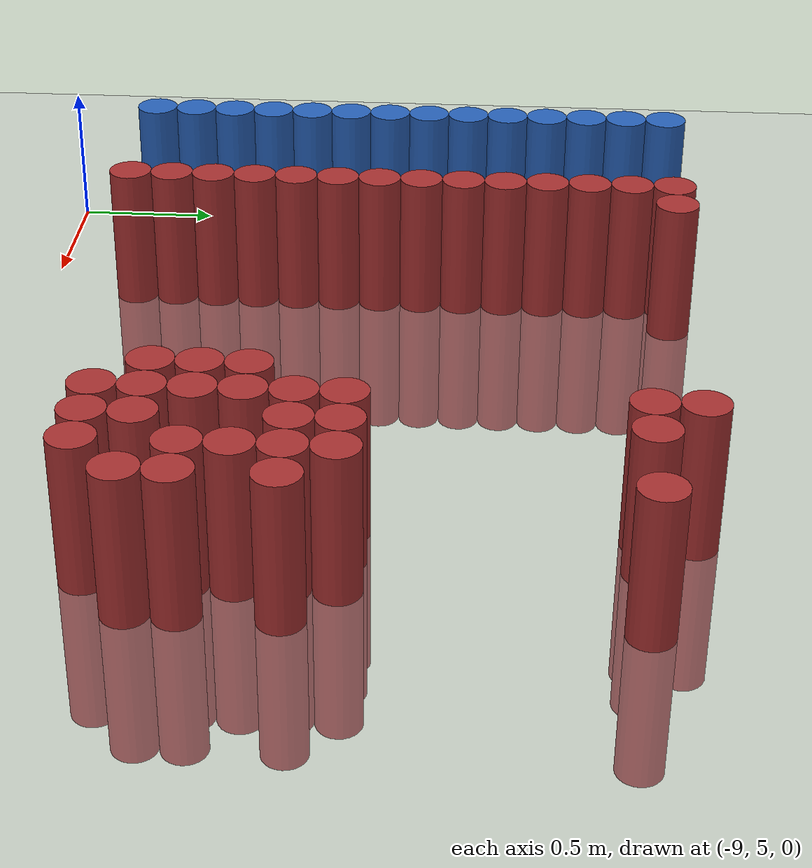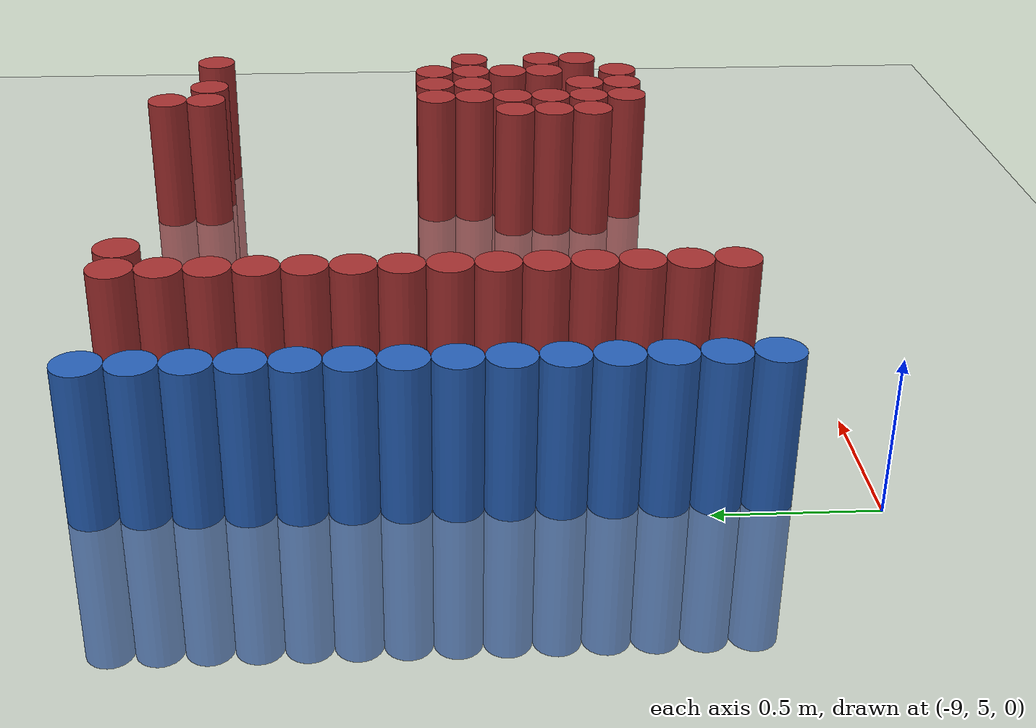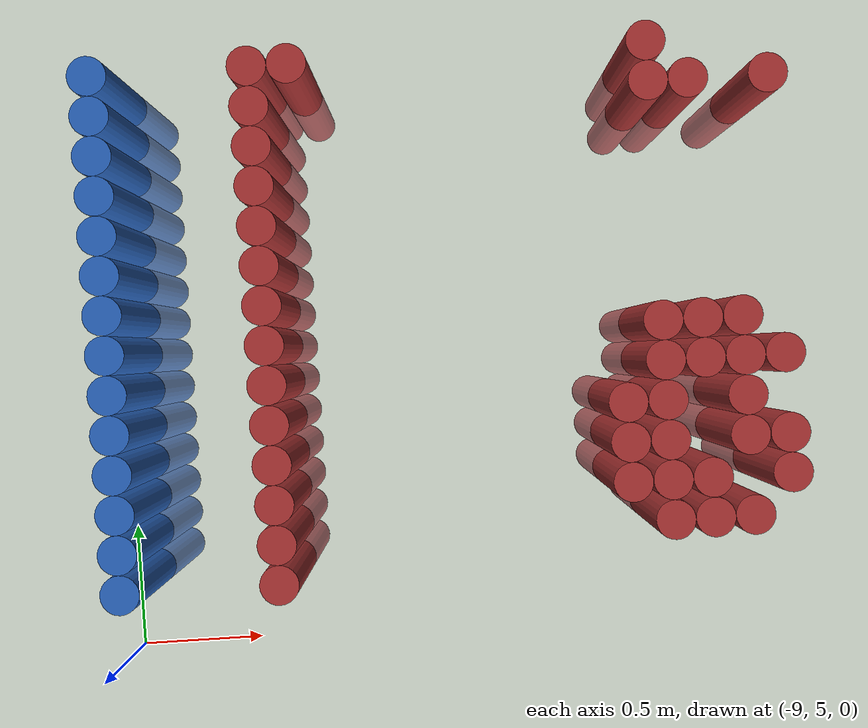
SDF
<sdf version="1.6">
 <world name="default">
  <model name="ground_plane">
   <static>1</static>
   <link name="link">
    <collision name="collision">
     <geometry><plane><normal>0 0 1</normal><size>100 100</size></plane></geometry>
     <surface><friction><ode><mu>100</mu><mu2>50</mu2></ode></friction></surface>
    </collision>
    <visual name="visual">
     <cast_shadows>0</cast_shadows>
     <geometry><plane><normal>0 0 1</normal><size>100 100</size></plane></geometry>
     <material>
      <script><uri>file://media/materials/scripts/gazebo.material</uri><name>Gazebo/Grey</name></script>
     </material>
    </visual>
   </link>
  </model>
  <model name="unit_cylinder_126">
   <static>1</static>
   <pose>-8.925000 5.325000 0.000000 0.000000 0.000000 0.000000</pose>
   <link name="link">
    <inertial>
     <mass>1</mass>
     <inertia><ixx>0.145833</ixx><ixy>0</ixy><ixz>0</ixz><iyy>0.145833</iyy><iyz>0</iyz><izz>0.125</izz></inertia>
    </inertial>
    <collision name="collision">
     <geometry><cylinder><radius>0.075000</radius><length>1</length></cylinder></geometry>
    </collision>
    <visual name="visual">
     <geometry><cylinder><radius>0.075000</radius><length>1</length></cylinder></geometry>
     <material>
      <ambient>0.152000 0.379000 0.720000 1</ambient>
      <diffuse>0.152000 0.379000 0.720000 1</diffuse>
     </material>
     <material>
      <script><name>Gazebo/Grey</name><uri>file://media/materials/scripts/gazebo.material</uri></script>
     </material>
    </visual>
   </link>
  </model>
  <model name="unit_cylinder_127">
   <static>1</static>
   <pose>-8.925000 5.475000 0.000000 0.000000 0.000000 0.000000</pose>
   <link name="link">
    <inertial>
     <mass>1</mass>
     <inertia><ixx>0.145833</ixx><ixy>0</ixy><ixz>0</ixz><iyy>0.145833</iyy><iyz>0</iyz><izz>0.125</izz></inertia>
    </inertial>
    <collision name="collision">
     <geometry><cylinder><radius>0.075000</radius><length>1</length></cylinder></geometry>
    </collision>
    <visual name="visual">
     <geometry><cylinder><radius>0.075000</radius><length>1</length></cylinder></geometry>
     <material>
      <ambient>0.152000 0.379000 0.720000 1</ambient>
      <diffuse>0.152000 0.379000 0.720000 1</diffuse>
     </material>
     <material>
      <script><name>Gazebo/Grey</name><uri>file://media/materials/scripts/gazebo.material</uri></script>
     </material>
    </visual>
   </link>
  </model>
  <model name="unit_cylinder_128">
   <static>1</static>
   <pose>-8.925000 5.625000 0.000000 0.000000 0.000000 0.000000</pose>
   <link name="link">
    <inertial>
     <mass>1</mass>
     <inertia><ixx>0.145833</ixx><ixy>0</ixy><ixz>0</ixz><iyy>0.145833</iyy><iyz>0</iyz><izz>0.125</izz></inertia>
    </inertial>
    <collision name="collision">
     <geometry><cylinder><radius>0.075000</radius><length>1</length></cylinder></geometry>
    </collision>
    <visual name="visual">
     <geometry><cylinder><radius>0.075000</radius><length>1</length></cylinder></geometry>
     <material>
      <ambient>0.152000 0.379000 0.720000 1</ambient>
      <diffuse>0.152000 0.379000 0.720000 1</diffuse>
     </material>
     <material>
      <script><name>Gazebo/Grey</name><uri>file://media/materials/scripts/gazebo.material</uri></script>
     </material>
    </visual>
   </link>
  </model>
  <model name="unit_cylinder_129">
   <static>1</static>
   <pose>-8.925000 5.775000 0.000000 0.000000 0.000000 0.000000</pose>
   <link name="link">
    <inertial>
     <mass>1</mass>
     <inertia><ixx>0.145833</ixx><ixy>0</ixy><ixz>0</ixz><iyy>0.145833</iyy><iyz>0</iyz><izz>0.125</izz></inertia>
    </inertial>
    <collision name="collision">
     <geometry><cylinder><radius>0.075000</radius><length>1</length></cylinder></geometry>
    </collision>
    <visual name="visual">
     <geometry><cylinder><radius>0.075000</radius><length>1</length></cylinder></geometry>
     <material>
      <ambient>0.152000 0.379000 0.720000 1</ambient>
      <diffuse>0.152000 0.379000 0.720000 1</diffuse>
     </material>
     <material>
      <script><name>Gazebo/Grey</name><uri>file://media/materials/scripts/gazebo.material</uri></script>
     </material>
    </visual>
   </link>
  </model>
  <model name="unit_cylinder_130">
   <static>1</static>
   <pose>-8.925000 5.925000 0.000000 0.000000 0.000000 0.000000</pose>
   <link name="link">
    <inertial>
     <mass>1</mass>
     <inertia><ixx>0.145833</ixx><ixy>0</ixy><ixz>0</ixz><iyy>0.145833</iyy><iyz>0</iyz><izz>0.125</izz></inertia>
    </inertial>
    <collision name="collision">
     <geometry><cylinder><radius>0.075000</radius><length>1</length></cylinder></geometry>
    </collision>
    <visual name="visual">
     <geometry><cylinder><radius>0.075000</radius><length>1</length></cylinder></geometry>
     <material>
      <ambient>0.152000 0.379000 0.720000 1</ambient>
      <diffuse>0.152000 0.379000 0.720000 1</diffuse>
     </material>
     <material>
      <script><name>Gazebo/Grey</name><uri>file://media/materials/scripts/gazebo.material</uri></script>
     </material>
    </visual>
   </link>
  </model>
  <model name="unit_cylinder_131">
   <static>1</static>
   <pose>-8.925000 6.075000 0.000000 0.000000 0.000000 0.000000</pose>
   <link name="link">
    <inertial>
     <mass>1</mass>
     <inertia><ixx>0.145833</ixx><ixy>0</ixy><ixz>0</ixz><iyy>0.145833</iyy><iyz>0</iyz><izz>0.125</izz></inertia>
    </inertial>
    <collision name="collision">
     <geometry><cylinder><radius>0.075000</radius><length>1</length></cylinder></geometry>
    </collision>
    <visual name="visual">
     <geometry><cylinder><radius>0.075000</radius><length>1</length></cylinder></geometry>
     <material>
      <ambient>0.152000 0.379000 0.720000 1</ambient>
      <diffuse>0.152000 0.379000 0.720000 1</diffuse>
     </material>
     <material>
      <script><name>Gazebo/Grey</name><uri>file://media/materials/scripts/gazebo.material</uri></script>
     </material>
    </visual>
   </link>
  </model>
  <model name="unit_cylinder_132">
   <static>1</static>
   <pose>-8.925000 6.225000 0.000000 0.000000 0.000000 0.000000</pose>
   <link name="link">
    <inertial>
     <mass>1</mass>
     <inertia><ixx>0.145833</ixx><ixy>0</ixy><ixz>0</ixz><iyy>0.145833</iyy><iyz>0</iyz><izz>0.125</izz></inertia>
    </inertial>
    <collision name="collision">
     <geometry><cylinder><radius>0.075000</radius><length>1</length></cylinder></geometry>
    </collision>
    <visual name="visual">
     <geometry><cylinder><radius>0.075000</radius><length>1</length></cylinder></geometry>
     <material>
      <ambient>0.152000 0.379000 0.720000 1</ambient>
      <diffuse>0.152000 0.379000 0.720000 1</diffuse>
     </material>
     <material>
      <script><name>Gazebo/Grey</name><uri>file://media/materials/scripts/gazebo.material</uri></script>
     </material>
    </visual>
   </link>
  </model>
  <model name="unit_cylinder_133">
   <static>1</static>
   <pose>-8.925000 6.375000 0.000000 0.000000 0.000000 0.000000</pose>
   <link name="link">
    <inertial>
     <mass>1</mass>
     <inertia><ixx>0.145833</ixx><ixy>0</ixy><ixz>0</ixz><iyy>0.145833</iyy><iyz>0</iyz><izz>0.125</izz></inertia>
    </inertial>
    <collision name="collision">
     <geometry><cylinder><radius>0.075000</radius><length>1</length></cylinder></geometry>
    </collision>
    <visual name="visual">
     <geometry><cylinder><radius>0.075000</radius><length>1</length></cylinder></geometry>
     <material>
      <ambient>0.152000 0.379000 0.720000 1</ambient>
      <diffuse>0.152000 0.379000 0.720000 1</diffuse>
     </material>
     <material>
      <script><name>Gazebo/Grey</name><uri>file://media/materials/scripts/gazebo.material</uri></script>
     </material>
    </visual>
   </link>
  </model>
  <model name="unit_cylinder_134">
   <static>1</static>
   <pose>-8.925000 6.525000 0.000000 0.000000 0.000000 0.000000</pose>
   <link name="link">
    <inertial>
     <mass>1</mass>
     <inertia><ixx>0.145833</ixx><ixy>0</ixy><ixz>0</ixz><iyy>0.145833</iyy><iyz>0</iyz><izz>0.125</izz></inertia>
    </inertial>
    <collision name="collision">
     <geometry><cylinder><radius>0.075000</radius><length>1</length></cylinder></geometry>
    </collision>
    <visual name="visual">
     <geometry><cylinder><radius>0.075000</radius><length>1</length></cylinder></geometry>
     <material>
      <ambient>0.152000 0.379000 0.720000 1</ambient>
      <diffuse>0.152000 0.379000 0.720000 1</diffuse>
     </material>
     <material>
      <script><name>Gazebo/Grey</name><uri>file://media/materials/scripts/gazebo.material</uri></script>
     </material>
    </visual>
   </link>
  </model>
  <model name="unit_cylinder_135">
   <static>1</static>
   <pose>-8.925000 6.675000 0.000000 0.000000 0.000000 0.000000</pose>
   <link name="link">
    <inertial>
     <mass>1</mass>
     <inertia><ixx>0.145833</ixx><ixy>0</ixy><ixz>0</ixz><iyy>0.145833</iyy><iyz>0</iyz><izz>0.125</izz></inertia>
    </inertial>
    <collision name="collision">
     <geometry><cylinder><radius>0.075000</radius><length>1</length></cylinder></geometry>
    </collision>
    <visual name="visual">
     <geometry><cylinder><radius>0.075000</radius><length>1</length></cylinder></geometry>
     <material>
      <ambient>0.152000 0.379000 0.720000 1</ambient>
      <diffuse>0.152000 0.379000 0.720000 1</diffuse>
     </material>
     <material>
      <script><name>Gazebo/Grey</name><uri>file://media/materials/scripts/gazebo.material</uri></script>
     </material>
    </visual>
   </link>
  </model>
  <model name="unit_cylinder_136">
   <static>1</static>
   <pose>-8.925000 6.825000 0.000000 0.000000 0.000000 0.000000</pose>
   <link name="link">
    <inertial>
     <mass>1</mass>
     <inertia><ixx>0.145833</ixx><ixy>0</ixy><ixz>0</ixz><iyy>0.145833</iyy><iyz>0</iyz><izz>0.125</izz></inertia>
    </inertial>
    <collision name="collision">
     <geometry><cylinder><radius>0.075000</radius><length>1</length></cylinder></geometry>
    </collision>
    <visual name="visual">
     <geometry><cylinder><radius>0.075000</radius><length>1</length></cylinder></geometry>
     <material>
      <ambient>0.152000 0.379000 0.720000 1</ambient>
      <diffuse>0.152000 0.379000 0.720000 1</diffuse>
     </material>
     <material>
      <script><name>Gazebo/Grey</name><uri>file://media/materials/scripts/gazebo.material</uri></script>
     </material>
    </visual>
   </link>
  </model>
  <model name="unit_cylinder_137">
   <static>1</static>
   <pose>-8.925000 6.975000 0.000000 0.000000 0.000000 0.000000</pose>
   <link name="link">
    <inertial>
     <mass>1</mass>
     <inertia><ixx>0.145833</ixx><ixy>0</ixy><ixz>0</ixz><iyy>0.145833</iyy><iyz>0</iyz><izz>0.125</izz></inertia>
    </inertial>
    <collision name="collision">
     <geometry><cylinder><radius>0.075000</radius><length>1</length></cylinder></geometry>
    </collision>
    <visual name="visual">
     <geometry><cylinder><radius>0.075000</radius><length>1</length></cylinder></geometry>
     <material>
      <ambient>0.152000 0.379000 0.720000 1</ambient>
      <diffuse>0.152000 0.379000 0.720000 1</diffuse>
     </material>
     <material>
      <script><name>Gazebo/Grey</name><uri>file://media/materials/scripts/gazebo.material</uri></script>
     </material>
    </visual>
   </link>
  </model>
  <model name="unit_cylinder_138">
   <static>1</static>
   <pose>-8.925000 7.125000 0.000000 0.000000 0.000000 0.000000</pose>
   <link name="link">
    <inertial>
     <mass>1</mass>
     <inertia><ixx>0.145833</ixx><ixy>0</ixy><ixz>0</ixz><iyy>0.145833</iyy><iyz>0</iyz><izz>0.125</izz></inertia>
    </inertial>
    <collision name="collision">
     <geometry><cylinder><radius>0.075000</radius><length>1</length></cylinder></geometry>
    </collision>
    <visual name="visual">
     <geometry><cylinder><radius>0.075000</radius><length>1</length></cylinder></geometry>
     <material>
      <ambient>0.152000 0.379000 0.720000 1</ambient>
      <diffuse>0.152000 0.379000 0.720000 1</diffuse>
     </material>
     <material>
      <script><name>Gazebo/Grey</name><uri>file://media/materials/scripts/gazebo.material</uri></script>
     </material>
    </visual>
   </link>
  </model>
  <model name="unit_cylinder_139">
   <static>1</static>
   <pose>-8.925000 7.275000 0.000000 0.000000 0.000000 0.000000</pose>
   <link name="link">
    <inertial>
     <mass>1</mass>
     <inertia><ixx>0.145833</ixx><ixy>0</ixy><ixz>0</ixz><iyy>0.145833</iyy><iyz>0</iyz><izz>0.125</izz></inertia>
    </inertial>
    <collision name="collision">
     <geometry><cylinder><radius>0.075000</radius><length>1</length></cylinder></geometry>
    </collision>
    <visual name="visual">
     <geometry><cylinder><radius>0.075000</radius><length>1</length></cylinder></geometry>
     <material>
      <ambient>0.152000 0.379000 0.720000 1</ambient>
      <diffuse>0.152000 0.379000 0.720000 1</diffuse>
     </material>
     <material>
      <script><name>Gazebo/Grey</name><uri>file://media/materials/scripts/gazebo.material</uri></script>
     </material>
    </visual>
   </link>
  </model>
  <model name="unit_cylinder_162">
   <static>1</static>
   <pose>-8.325000 5.325000 0.000000 0.000000 0.000000 0.000000</pose>
   <link name="link">
    <inertial>
     <mass>1</mass>
     <inertia><ixx>0.145833</ixx><ixy>0</ixy><ixz>0</ixz><iyy>0.145833</iyy><iyz>0</iyz><izz>0.125</izz></inertia>
    </inertial>
    <collision name="collision">
     <geometry><cylinder><radius>0.075000</radius><length>1</length></cylinder></geometry>
    </collision>
    <visual name="visual">
     <geometry><cylinder><radius>0.075000</radius><length>1</length></cylinder></geometry>
     <material>
      <ambient>0.648000 0.192000 0.192000 1</ambient>
      <diffuse>0.648000 0.192000 0.192000 1</diffuse>
     </material>
     <material>
      <script><name>Gazebo/Grey</name><uri>file://media/materials/scripts/gazebo.material</uri></script>
     </material>
    </visual>
   </link>
  </model>
  <model name="unit_cylinder_163">
   <static>1</static>
   <pose>-8.325000 5.475000 0.000000 0.000000 0.000000 0.000000</pose>
   <link name="link">
    <inertial>
     <mass>1</mass>
     <inertia><ixx>0.145833</ixx><ixy>0</ixy><ixz>0</ixz><iyy>0.145833</iyy><iyz>0</iyz><izz>0.125</izz></inertia>
    </inertial>
    <collision name="collision">
     <geometry><cylinder><radius>0.075000</radius><length>1</length></cylinder></geometry>
    </collision>
    <visual name="visual">
     <geometry><cylinder><radius>0.075000</radius><length>1</length></cylinder></geometry>
     <material>
      <ambient>0.648000 0.192000 0.192000 1</ambient>
      <diffuse>0.648000 0.192000 0.192000 1</diffuse>
     </material>
     <material>
      <script><name>Gazebo/Grey</name><uri>file://media/materials/scripts/gazebo.material</uri></script>
     </material>
    </visual>
   </link>
  </model>
  <model name="unit_cylinder_164">
   <static>1</static>
   <pose>-8.325000 5.625000 0.000000 0.000000 0.000000 0.000000</pose>
   <link name="link">
    <inertial>
     <mass>1</mass>
     <inertia><ixx>0.145833</ixx><ixy>0</ixy><ixz>0</ixz><iyy>0.145833</iyy><iyz>0</iyz><izz>0.125</izz></inertia>
    </inertial>
    <collision name="collision">
     <geometry><cylinder><radius>0.075000</radius><length>1</length></cylinder></geometry>
    </collision>
    <visual name="visual">
     <geometry><cylinder><radius>0.075000</radius><length>1</length></cylinder></geometry>
     <material>
      <ambient>0.648000 0.192000 0.192000 1</ambient>
      <diffuse>0.648000 0.192000 0.192000 1</diffuse>
     </material>
     <material>
      <script><name>Gazebo/Grey</name><uri>file://media/materials/scripts/gazebo.material</uri></script>
     </material>
    </visual>
   </link>
  </model>
  <model name="unit_cylinder_165">
   <static>1</static>
   <pose>-8.325000 5.775000 0.000000 0.000000 0.000000 0.000000</pose>
   <link name="link">
    <inertial>
     <mass>1</mass>
     <inertia><ixx>0.145833</ixx><ixy>0</ixy><ixz>0</ixz><iyy>0.145833</iyy><iyz>0</iyz><izz>0.125</izz></inertia>
    </inertial>
    <collision name="collision">
     <geometry><cylinder><radius>0.075000</radius><length>1</length></cylinder></geometry>
    </collision>
    <visual name="visual">
     <geometry><cylinder><radius>0.075000</radius><length>1</length></cylinder></geometry>
     <material>
      <ambient>0.648000 0.192000 0.192000 1</ambient>
      <diffuse>0.648000 0.192000 0.192000 1</diffuse>
     </material>
     <material>
      <script><name>Gazebo/Grey</name><uri>file://media/materials/scripts/gazebo.material</uri></script>
     </material>
    </visual>
   </link>
  </model>
  <model name="unit_cylinder_166">
   <static>1</static>
   <pose>-8.325000 5.925000 0.000000 0.000000 0.000000 0.000000</pose>
   <link name="link">
    <inertial>
     <mass>1</mass>
     <inertia><ixx>0.145833</ixx><ixy>0</ixy><ixz>0</ixz><iyy>0.145833</iyy><iyz>0</iyz><izz>0.125</izz></inertia>
    </inertial>
    <collision name="collision">
     <geometry><cylinder><radius>0.075000</radius><length>1</length></cylinder></geometry>
    </collision>
    <visual name="visual">
     <geometry><cylinder><radius>0.075000</radius><length>1</length></cylinder></geometry>
     <material>
      <ambient>0.648000 0.192000 0.192000 1</ambient>
      <diffuse>0.648000 0.192000 0.192000 1</diffuse>
     </material>
     <material>
      <script><name>Gazebo/Grey</name><uri>file://media/materials/scripts/gazebo.material</uri></script>
     </material>
    </visual>
   </link>
  </model>
  <model name="unit_cylinder_167">
   <static>1</static>
   <pose>-8.325000 6.075000 0.000000 0.000000 0.000000 0.000000</pose>
   <link name="link">
    <inertial>
     <mass>1</mass>
     <inertia><ixx>0.145833</ixx><ixy>0</ixy><ixz>0</ixz><iyy>0.145833</iyy><iyz>0</iyz><izz>0.125</izz></inertia>
    </inertial>
    <collision name="collision">
     <geometry><cylinder><radius>0.075000</radius><length>1</length></cylinder></geometry>
    </collision>
    <visual name="visual">
     <geometry><cylinder><radius>0.075000</radius><length>1</length></cylinder></geometry>
     <material>
      <ambient>0.648000 0.192000 0.192000 1</ambient>
      <diffuse>0.648000 0.192000 0.192000 1</diffuse>
     </material>
     <material>
      <script><name>Gazebo/Grey</name><uri>file://media/materials/scripts/gazebo.material</uri></script>
     </material>
    </visual>
   </link>
  </model>
  <model name="unit_cylinder_168">
   <static>1</static>
   <pose>-8.325000 6.225000 0.000000 0.000000 0.000000 0.000000</pose>
   <link name="link">
    <inertial>
     <mass>1</mass>
     <inertia><ixx>0.145833</ixx><ixy>0</ixy><ixz>0</ixz><iyy>0.145833</iyy><iyz>0</iyz><izz>0.125</izz></inertia>
    </inertial>
    <collision name="collision">
     <geometry><cylinder><radius>0.075000</radius><length>1</length></cylinder></geometry>
    </collision>
    <visual name="visual">
     <geometry><cylinder><radius>0.075000</radius><length>1</length></cylinder></geometry>
     <material>
      <ambient>0.648000 0.192000 0.192000 1</ambient>
      <diffuse>0.648000 0.192000 0.192000 1</diffuse>
     </material>
     <material>
      <script><name>Gazebo/Grey</name><uri>file://media/materials/scripts/gazebo.material</uri></script>
     </material>
    </visual>
   </link>
  </model>
  <model name="unit_cylinder_169">
   <static>1</static>
   <pose>-8.325000 6.375000 0.000000 0.000000 0.000000 0.000000</pose>
   <link name="link">
    <inertial>
     <mass>1</mass>
     <inertia><ixx>0.145833</ixx><ixy>0</ixy><ixz>0</ixz><iyy>0.145833</iyy><iyz>0</iyz><izz>0.125</izz></inertia>
    </inertial>
    <collision name="collision">
     <geometry><cylinder><radius>0.075000</radius><length>1</length></cylinder></geometry>
    </collision>
    <visual name="visual">
     <geometry><cylinder><radius>0.075000</radius><length>1</length></cylinder></geometry>
     <material>
      <ambient>0.648000 0.192000 0.192000 1</ambient>
      <diffuse>0.648000 0.192000 0.192000 1</diffuse>
     </material>
     <material>
      <script><name>Gazebo/Grey</name><uri>file://media/materials/scripts/gazebo.material</uri></script>
     </material>
    </visual>
   </link>
  </model>
  <model name="unit_cylinder_170">
   <static>1</static>
   <pose>-8.325000 6.525000 0.000000 0.000000 0.000000 0.000000</pose>
   <link name="link">
    <inertial>
     <mass>1</mass>
     <inertia><ixx>0.145833</ixx><ixy>0</ixy><ixz>0</ixz><iyy>0.145833</iyy><iyz>0</iyz><izz>0.125</izz></inertia>
    </inertial>
    <collision name="collision">
     <geometry><cylinder><radius>0.075000</radius><length>1</length></cylinder></geometry>
    </collision>
    <visual name="visual">
     <geometry><cylinder><radius>0.075000</radius><length>1</length></cylinder></geometry>
     <material>
      <ambient>0.648000 0.192000 0.192000 1</ambient>
      <diffuse>0.648000 0.192000 0.192000 1</diffuse>
     </material>
     <material>
      <script><name>Gazebo/Grey</name><uri>file://media/materials/scripts/gazebo.material</uri></script>
     </material>
    </visual>
   </link>
  </model>
  <model name="unit_cylinder_171">
   <static>1</static>
   <pose>-8.325000 6.675000 0.000000 0.000000 0.000000 0.000000</pose>
   <link name="link">
    <inertial>
     <mass>1</mass>
     <inertia><ixx>0.145833</ixx><ixy>0</ixy><ixz>0</ixz><iyy>0.145833</iyy><iyz>0</iyz><izz>0.125</izz></inertia>
    </inertial>
    <collision name="collision">
     <geometry><cylinder><radius>0.075000</radius><length>1</length></cylinder></geometry>
    </collision>
    <visual name="visual">
     <geometry><cylinder><radius>0.075000</radius><length>1</length></cylinder></geometry>
     <material>
      <ambient>0.648000 0.192000 0.192000 1</ambient>
      <diffuse>0.648000 0.192000 0.192000 1</diffuse>
     </material>
     <material>
      <script><name>Gazebo/Grey</name><uri>file://media/materials/scripts/gazebo.material</uri></script>
     </material>
    </visual>
   </link>
  </model>
  <model name="unit_cylinder_172">
   <static>1</static>
   <pose>-8.325000 6.825000 0.000000 0.000000 0.000000 0.000000</pose>
   <link name="link">
    <inertial>
     <mass>1</mass>
     <inertia><ixx>0.145833</ixx><ixy>0</ixy><ixz>0</ixz><iyy>0.145833</iyy><iyz>0</iyz><izz>0.125</izz></inertia>
    </inertial>
    <collision name="collision">
     <geometry><cylinder><radius>0.075000</radius><length>1</length></cylinder></geometry>
    </collision>
    <visual name="visual">
     <geometry><cylinder><radius>0.075000</radius><length>1</length></cylinder></geometry>
     <material>
      <ambient>0.648000 0.192000 0.192000 1</ambient>
      <diffuse>0.648000 0.192000 0.192000 1</diffuse>
     </material>
     <material>
      <script><name>Gazebo/Grey</name><uri>file://media/materials/scripts/gazebo.material</uri></script>
     </material>
    </visual>
   </link>
  </model>
  <model name="unit_cylinder_173">
   <static>1</static>
   <pose>-8.325000 6.975000 0.000000 0.000000 0.000000 0.000000</pose>
   <link name="link">
    <inertial>
     <mass>1</mass>
     <inertia><ixx>0.145833</ixx><ixy>0</ixy><ixz>0</ixz><iyy>0.145833</iyy><iyz>0</iyz><izz>0.125</izz></inertia>
    </inertial>
    <collision name="collision">
     <geometry><cylinder><radius>0.075000</radius><length>1</length></cylinder></geometry>
    </collision>
    <visual name="visual">
     <geometry><cylinder><radius>0.075000</radius><length>1</length></cylinder></geometry>
     <material>
      <ambient>0.648000 0.192000 0.192000 1</ambient>
      <diffuse>0.648000 0.192000 0.192000 1</diffuse>
     </material>
     <material>
      <script><name>Gazebo/Grey</name><uri>file://media/materials/scripts/gazebo.material</uri></script>
     </material>
    </visual>
   </link>
  </model>
  <model name="unit_cylinder_174">
   <static>1</static>
   <pose>-8.325000 7.125000 0.000000 0.000000 0.000000 0.000000</pose>
   <link name="link">
    <inertial>
     <mass>1</mass>
     <inertia><ixx>0.145833</ixx><ixy>0</ixy><ixz>0</ixz><iyy>0.145833</iyy><iyz>0</iyz><izz>0.125</izz></inertia>
    </inertial>
    <collision name="collision">
     <geometry><cylinder><radius>0.075000</radius><length>1</length></cylinder></geometry>
    </collision>
    <visual name="visual">
     <geometry><cylinder><radius>0.075000</radius><length>1</length></cylinder></geometry>
     <material>
      <ambient>0.648000 0.192000 0.192000 1</ambient>
      <diffuse>0.648000 0.192000 0.192000 1</diffuse>
     </material>
     <material>
      <script><name>Gazebo/Grey</name><uri>file://media/materials/scripts/gazebo.material</uri></script>
     </material>
    </visual>
   </link>
  </model>
  <model name="unit_cylinder_175">
   <static>1</static>
   <pose>-8.325000 7.275000 0.000000 0.000000 0.000000 0.000000</pose>
   <link name="link">
    <inertial>
     <mass>1</mass>
     <inertia><ixx>0.145833</ixx><ixy>0</ixy><ixz>0</ixz><iyy>0.145833</iyy><iyz>0</iyz><izz>0.125</izz></inertia>
    </inertial>
    <collision name="collision">
     <geometry><cylinder><radius>0.075000</radius><length>1</length></cylinder></geometry>
    </collision>
    <visual name="visual">
     <geometry><cylinder><radius>0.075000</radius><length>1</length></cylinder></geometry>
     <material>
      <ambient>0.648000 0.192000 0.192000 1</ambient>
      <diffuse>0.648000 0.192000 0.192000 1</diffuse>
     </material>
     <material>
      <script><name>Gazebo/Grey</name><uri>file://media/materials/scripts/gazebo.material</uri></script>
     </material>
    </visual>
   </link>
  </model>
  <model name="unit_cylinder_177">
   <static>1</static>
   <pose>-8.175000 7.275000 0.000000 0.000000 0.000000 0.000000</pose>
   <link name="link">
    <inertial>
     <mass>1</mass>
     <inertia><ixx>0.145833</ixx><ixy>0</ixy><ixz>0</ixz><iyy>0.145833</iyy><iyz>0</iyz><izz>0.125</izz></inertia>
    </inertial>
    <collision name="collision">
     <geometry><cylinder><radius>0.075000</radius><length>1</length></cylinder></geometry>
    </collision>
    <visual name="visual">
     <geometry><cylinder><radius>0.075000</radius><length>1</length></cylinder></geometry>
     <material>
      <ambient>0.648000 0.192000 0.192000 1</ambient>
      <diffuse>0.648000 0.192000 0.192000 1</diffuse>
     </material>
     <material>
      <script><name>Gazebo/Grey</name><uri>file://media/materials/scripts/gazebo.material</uri></script>
     </material>
    </visual>
   </link>
  </model>
  <model name="unit_cylinder_195">
   <static>1</static>
   <pose>-6.975000 5.625000 0.000000 0.000000 0.000000 0.000000</pose>
   <link name="link">
    <inertial>
     <mass>1</mass>
     <inertia><ixx>0.145833</ixx><ixy>0</ixy><ixz>0</ixz><iyy>0.145833</iyy><iyz>0</iyz><izz>0.125</izz></inertia>
    </inertial>
    <collision name="collision">
     <geometry><cylinder><radius>0.075000</radius><length>1</length></cylinder></geometry>
    </collision>
    <visual name="visual">
     <geometry><cylinder><radius>0.075000</radius><length>1</length></cylinder></geometry>
     <material>
      <ambient>0.648000 0.192000 0.192000 1</ambient>
      <diffuse>0.648000 0.192000 0.192000 1</diffuse>
     </material>
     <material>
      <script><name>Gazebo/Grey</name><uri>file://media/materials/scripts/gazebo.material</uri></script>
     </material>
    </visual>
   </link>
  </model>
  <model name="unit_cylinder_196">
   <static>1</static>
   <pose>-6.975000 5.775000 0.000000 0.000000 0.000000 0.000000</pose>
   <link name="link">
    <inertial>
     <mass>1</mass>
     <inertia><ixx>0.145833</ixx><ixy>0</ixy><ixz>0</ixz><iyy>0.145833</iyy><iyz>0</iyz><izz>0.125</izz></inertia>
    </inertial>
    <collision name="collision">
     <geometry><cylinder><radius>0.075000</radius><length>1</length></cylinder></geometry>
    </collision>
    <visual name="visual">
     <geometry><cylinder><radius>0.075000</radius><length>1</length></cylinder></geometry>
     <material>
      <ambient>0.648000 0.192000 0.192000 1</ambient>
      <diffuse>0.648000 0.192000 0.192000 1</diffuse>
     </material>
     <material>
      <script><name>Gazebo/Grey</name><uri>file://media/materials/scripts/gazebo.material</uri></script>
     </material>
    </visual>
   </link>
  </model>
  <model name="unit_cylinder_197">
   <static>1</static>
   <pose>-6.975000 5.925000 0.000000 0.000000 0.000000 0.000000</pose>
   <link name="link">
    <inertial>
     <mass>1</mass>
     <inertia><ixx>0.145833</ixx><ixy>0</ixy><ixz>0</ixz><iyy>0.145833</iyy><iyz>0</iyz><izz>0.125</izz></inertia>
    </inertial>
    <collision name="collision">
     <geometry><cylinder><radius>0.075000</radius><length>1</length></cylinder></geometry>
    </collision>
    <visual name="visual">
     <geometry><cylinder><radius>0.075000</radius><length>1</length></cylinder></geometry>
     <material>
      <ambient>0.648000 0.192000 0.192000 1</ambient>
      <diffuse>0.648000 0.192000 0.192000 1</diffuse>
     </material>
     <material>
      <script><name>Gazebo/Grey</name><uri>file://media/materials/scripts/gazebo.material</uri></script>
     </material>
    </visual>
   </link>
  </model>
  <model name="unit_cylinder_198">
   <static>1</static>
   <pose>-6.825000 5.475000 0.000000 0.000000 0.000000 0.000000</pose>
   <link name="link">
    <inertial>
     <mass>1</mass>
     <inertia><ixx>0.145833</ixx><ixy>0</ixy><ixz>0</ixz><iyy>0.145833</iyy><iyz>0</iyz><izz>0.125</izz></inertia>
    </inertial>
    <collision name="collision">
     <geometry><cylinder><radius>0.075000</radius><length>1</length></cylinder></geometry>
    </collision>
    <visual name="visual">
     <geometry><cylinder><radius>0.075000</radius><length>1</length></cylinder></geometry>
     <material>
      <ambient>0.648000 0.192000 0.192000 1</ambient>
      <diffuse>0.648000 0.192000 0.192000 1</diffuse>
     </material>
     <material>
      <script><name>Gazebo/Grey</name><uri>file://media/materials/scripts/gazebo.material</uri></script>
     </material>
    </visual>
   </link>
  </model>
  <model name="unit_cylinder_199">
   <static>1</static>
   <pose>-6.825000 5.625000 0.000000 0.000000 0.000000 0.000000</pose>
   <link name="link">
    <inertial>
     <mass>1</mass>
     <inertia><ixx>0.145833</ixx><ixy>0</ixy><ixz>0</ixz><iyy>0.145833</iyy><iyz>0</iyz><izz>0.125</izz></inertia>
    </inertial>
    <collision name="collision">
     <geometry><cylinder><radius>0.075000</radius><length>1</length></cylinder></geometry>
    </collision>
    <visual name="visual">
     <geometry><cylinder><radius>0.075000</radius><length>1</length></cylinder></geometry>
     <material>
      <ambient>0.648000 0.192000 0.192000 1</ambient>
      <diffuse>0.648000 0.192000 0.192000 1</diffuse>
     </material>
     <material>
      <script><name>Gazebo/Grey</name><uri>file://media/materials/scripts/gazebo.material</uri></script>
     </material>
    </visual>
   </link>
  </model>
  <model name="unit_cylinder_200">
   <static>1</static>
   <pose>-6.825000 5.775000 0.000000 0.000000 0.000000 0.000000</pose>
   <link name="link">
    <inertial>
     <mass>1</mass>
     <inertia><ixx>0.145833</ixx><ixy>0</ixy><ixz>0</ixz><iyy>0.145833</iyy><iyz>0</iyz><izz>0.125</izz></inertia>
    </inertial>
    <collision name="collision">
     <geometry><cylinder><radius>0.075000</radius><length>1</length></cylinder></geometry>
    </collision>
    <visual name="visual">
     <geometry><cylinder><radius>0.075000</radius><length>1</length></cylinder></geometry>
     <material>
      <ambient>0.648000 0.192000 0.192000 1</ambient>
      <diffuse>0.648000 0.192000 0.192000 1</diffuse>
     </material>
     <material>
      <script><name>Gazebo/Grey</name><uri>file://media/materials/scripts/gazebo.material</uri></script>
     </material>
    </visual>
   </link>
  </model>
  <model name="unit_cylinder_201">
   <static>1</static>
   <pose>-6.825000 5.925000 0.000000 0.000000 0.000000 0.000000</pose>
   <link name="link">
    <inertial>
     <mass>1</mass>
     <inertia><ixx>0.145833</ixx><ixy>0</ixy><ixz>0</ixz><iyy>0.145833</iyy><iyz>0</iyz><izz>0.125</izz></inertia>
    </inertial>
    <collision name="collision">
     <geometry><cylinder><radius>0.075000</radius><length>1</length></cylinder></geometry>
    </collision>
    <visual name="visual">
     <geometry><cylinder><radius>0.075000</radius><length>1</length></cylinder></geometry>
     <material>
      <ambient>0.648000 0.192000 0.192000 1</ambient>
      <diffuse>0.648000 0.192000 0.192000 1</diffuse>
     </material>
     <material>
      <script><name>Gazebo/Grey</name><uri>file://media/materials/scripts/gazebo.material</uri></script>
     </material>
    </visual>
   </link>
  </model>
  <model name="unit_cylinder_202">
   <static>1</static>
   <pose>-6.825000 6.075000 0.000000 0.000000 0.000000 0.000000</pose>
   <link name="link">
    <inertial>
     <mass>1</mass>
     <inertia><ixx>0.145833</ixx><ixy>0</ixy><ixz>0</ixz><iyy>0.145833</iyy><iyz>0</iyz><izz>0.125</izz></inertia>
    </inertial>
    <collision name="collision">
     <geometry><cylinder><radius>0.075000</radius><length>1</length></cylinder></geometry>
    </collision>
    <visual name="visual">
     <geometry><cylinder><radius>0.075000</radius><length>1</length></cylinder></geometry>
     <material>
      <ambient>0.648000 0.192000 0.192000 1</ambient>
      <diffuse>0.648000 0.192000 0.192000 1</diffuse>
     </material>
     <material>
      <script><name>Gazebo/Grey</name><uri>file://media/materials/scripts/gazebo.material</uri></script>
     </material>
    </visual>
   </link>
  </model>
  <model name="unit_cylinder_203">
   <static>1</static>
   <pose>-6.825000 6.225000 0.000000 0.000000 0.000000 0.000000</pose>
   <link name="link">
    <inertial>
     <mass>1</mass>
     <inertia><ixx>0.145833</ixx><ixy>0</ixy><ixz>0</ixz><iyy>0.145833</iyy><iyz>0</iyz><izz>0.125</izz></inertia>
    </inertial>
    <collision name="collision">
     <geometry><cylinder><radius>0.075000</radius><length>1</length></cylinder></geometry>
    </collision>
    <visual name="visual">
     <geometry><cylinder><radius>0.075000</radius><length>1</length></cylinder></geometry>
     <material>
      <ambient>0.648000 0.192000 0.192000 1</ambient>
      <diffuse>0.648000 0.192000 0.192000 1</diffuse>
     </material>
     <material>
      <script><name>Gazebo/Grey</name><uri>file://media/materials/scripts/gazebo.material</uri></script>
     </material>
    </visual>
   </link>
  </model>
  <model name="unit_cylinder_204">
   <static>1</static>
   <pose>-6.825000 7.125000 0.000000 0.000000 0.000000 0.000000</pose>
   <link name="link">
    <inertial>
     <mass>1</mass>
     <inertia><ixx>0.145833</ixx><ixy>0</ixy><ixz>0</ixz><iyy>0.145833</iyy><iyz>0</iyz><izz>0.125</izz></inertia>
    </inertial>
    <collision name="collision">
     <geometry><cylinder><radius>0.075000</radius><length>1</length></cylinder></geometry>
    </collision>
    <visual name="visual">
     <geometry><cylinder><radius>0.075000</radius><length>1</length></cylinder></geometry>
     <material>
      <ambient>0.648000 0.192000 0.192000 1</ambient>
      <diffuse>0.648000 0.192000 0.192000 1</diffuse>
     </material>
     <material>
      <script><name>Gazebo/Grey</name><uri>file://media/materials/scripts/gazebo.material</uri></script>
     </material>
    </visual>
   </link>
  </model>
  <model name="unit_cylinder_205">
   <static>1</static>
   <pose>-6.825000 7.275000 0.000000 0.000000 0.000000 0.000000</pose>
   <link name="link">
    <inertial>
     <mass>1</mass>
     <inertia><ixx>0.145833</ixx><ixy>0</ixy><ixz>0</ixz><iyy>0.145833</iyy><iyz>0</iyz><izz>0.125</izz></inertia>
    </inertial>
    <collision name="collision">
     <geometry><cylinder><radius>0.075000</radius><length>1</length></cylinder></geometry>
    </collision>
    <visual name="visual">
     <geometry><cylinder><radius>0.075000</radius><length>1</length></cylinder></geometry>
     <material>
      <ambient>0.648000 0.192000 0.192000 1</ambient>
      <diffuse>0.648000 0.192000 0.192000 1</diffuse>
     </material>
     <material>
      <script><name>Gazebo/Grey</name><uri>file://media/materials/scripts/gazebo.material</uri></script>
     </material>
    </visual>
   </link>
  </model>
  <model name="unit_cylinder_208">
   <static>1</static>
   <pose>-6.675000 5.475000 0.000000 0.000000 0.000000 0.000000</pose>
   <link name="link">
    <inertial>
     <mass>1</mass>
     <inertia><ixx>0.145833</ixx><ixy>0</ixy><ixz>0</ixz><iyy>0.145833</iyy><iyz>0</iyz><izz>0.125</izz></inertia>
    </inertial>
    <collision name="collision">
     <geometry><cylinder><radius>0.075000</radius><length>1</length></cylinder></geometry>
    </collision>
    <visual name="visual">
     <geometry><cylinder><radius>0.075000</radius><length>1</length></cylinder></geometry>
     <material>
      <ambient>0.648000 0.192000 0.192000 1</ambient>
      <diffuse>0.648000 0.192000 0.192000 1</diffuse>
     </material>
     <material>
      <script><name>Gazebo/Grey</name><uri>file://media/materials/scripts/gazebo.material</uri></script>
     </material>
    </visual>
   </link>
  </model>
  <model name="unit_cylinder_209">
   <static>1</static>
   <pose>-6.675000 5.625000 0.000000 0.000000 0.000000 0.000000</pose>
   <link name="link">
    <inertial>
     <mass>1</mass>
     <inertia><ixx>0.145833</ixx><ixy>0</ixy><ixz>0</ixz><iyy>0.145833</iyy><iyz>0</iyz><izz>0.125</izz></inertia>
    </inertial>
    <collision name="collision">
     <geometry><cylinder><radius>0.075000</radius><length>1</length></cylinder></geometry>
    </collision>
    <visual name="visual">
     <geometry><cylinder><radius>0.075000</radius><length>1</length></cylinder></geometry>
     <material>
      <ambient>0.648000 0.192000 0.192000 1</ambient>
      <diffuse>0.648000 0.192000 0.192000 1</diffuse>
     </material>
     <material>
      <script><name>Gazebo/Grey</name><uri>file://media/materials/scripts/gazebo.material</uri></script>
     </material>
    </visual>
   </link>
  </model>
  <model name="unit_cylinder_210">
   <static>1</static>
   <pose>-6.675000 6.075000 0.000000 0.000000 0.000000 0.000000</pose>
   <link name="link">
    <inertial>
     <mass>1</mass>
     <inertia><ixx>0.145833</ixx><ixy>0</ixy><ixz>0</ixz><iyy>0.145833</iyy><iyz>0</iyz><izz>0.125</izz></inertia>
    </inertial>
    <collision name="collision">
     <geometry><cylinder><radius>0.075000</radius><length>1</length></cylinder></geometry>
    </collision>
    <visual name="visual">
     <geometry><cylinder><radius>0.075000</radius><length>1</length></cylinder></geometry>
     <material>
      <ambient>0.648000 0.192000 0.192000 1</ambient>
      <diffuse>0.648000 0.192000 0.192000 1</diffuse>
     </material>
     <material>
      <script><name>Gazebo/Grey</name><uri>file://media/materials/scripts/gazebo.material</uri></script>
     </material>
    </visual>
   </link>
  </model>
  <model name="unit_cylinder_211">
   <static>1</static>
   <pose>-6.675000 6.225000 0.000000 0.000000 0.000000 0.000000</pose>
   <link name="link">
    <inertial>
     <mass>1</mass>
     <inertia><ixx>0.145833</ixx><ixy>0</ixy><ixz>0</ixz><iyy>0.145833</iyy><iyz>0</iyz><izz>0.125</izz></inertia>
    </inertial>
    <collision name="collision">
     <geometry><cylinder><radius>0.075000</radius><length>1</length></cylinder></geometry>
    </collision>
    <visual name="visual">
     <geometry><cylinder><radius>0.075000</radius><length>1</length></cylinder></geometry>
     <material>
      <ambient>0.648000 0.192000 0.192000 1</ambient>
      <diffuse>0.648000 0.192000 0.192000 1</diffuse>
     </material>
     <material>
      <script><name>Gazebo/Grey</name><uri>file://media/materials/scripts/gazebo.material</uri></script>
     </material>
    </visual>
   </link>
  </model>
  <model name="unit_cylinder_212">
   <static>1</static>
   <pose>-6.675000 7.125000 0.000000 0.000000 0.000000 0.000000</pose>
   <link name="link">
    <inertial>
     <mass>1</mass>
     <inertia><ixx>0.145833</ixx><ixy>0</ixy><ixz>0</ixz><iyy>0.145833</iyy><iyz>0</iyz><izz>0.125</izz></inertia>
    </inertial>
    <collision name="collision">
     <geometry><cylinder><radius>0.075000</radius><length>1</length></cylinder></geometry>
    </collision>
    <visual name="visual">
     <geometry><cylinder><radius>0.075000</radius><length>1</length></cylinder></geometry>
     <material>
      <ambient>0.648000 0.192000 0.192000 1</ambient>
      <diffuse>0.648000 0.192000 0.192000 1</diffuse>
     </material>
     <material>
      <script><name>Gazebo/Grey</name><uri>file://media/materials/scripts/gazebo.material</uri></script>
     </material>
    </visual>
   </link>
  </model>
  <model name="unit_cylinder_217">
   <static>1</static>
   <pose>-6.525000 5.475000 0.000000 0.000000 0.000000 0.000000</pose>
   <link name="link">
    <inertial>
     <mass>1</mass>
     <inertia><ixx>0.145833</ixx><ixy>0</ixy><ixz>0</ixz><iyy>0.145833</iyy><iyz>0</iyz><izz>0.125</izz></inertia>
    </inertial>
    <collision name="collision">
     <geometry><cylinder><radius>0.075000</radius><length>1</length></cylinder></geometry>
    </collision>
    <visual name="visual">
     <geometry><cylinder><radius>0.075000</radius><length>1</length></cylinder></geometry>
     <material>
      <ambient>0.648000 0.192000 0.192000 1</ambient>
      <diffuse>0.648000 0.192000 0.192000 1</diffuse>
     </material>
     <material>
      <script><name>Gazebo/Grey</name><uri>file://media/materials/scripts/gazebo.material</uri></script>
     </material>
    </visual>
   </link>
  </model>
  <model name="unit_cylinder_218">
   <static>1</static>
   <pose>-6.525000 5.775000 0.000000 0.000000 0.000000 0.000000</pose>
   <link name="link">
    <inertial>
     <mass>1</mass>
     <inertia><ixx>0.145833</ixx><ixy>0</ixy><ixz>0</ixz><iyy>0.145833</iyy><iyz>0</iyz><izz>0.125</izz></inertia>
    </inertial>
    <collision name="collision">
     <geometry><cylinder><radius>0.075000</radius><length>1</length></cylinder></geometry>
    </collision>
    <visual name="visual">
     <geometry><cylinder><radius>0.075000</radius><length>1</length></cylinder></geometry>
     <material>
      <ambient>0.648000 0.192000 0.192000 1</ambient>
      <diffuse>0.648000 0.192000 0.192000 1</diffuse>
     </material>
     <material>
      <script><name>Gazebo/Grey</name><uri>file://media/materials/scripts/gazebo.material</uri></script>
     </material>
    </visual>
   </link>
  </model>
  <model name="unit_cylinder_219">
   <static>1</static>
   <pose>-6.525000 5.925000 0.000000 0.000000 0.000000 0.000000</pose>
   <link name="link">
    <inertial>
     <mass>1</mass>
     <inertia><ixx>0.145833</ixx><ixy>0</ixy><ixz>0</ixz><iyy>0.145833</iyy><iyz>0</iyz><izz>0.125</izz></inertia>
    </inertial>
    <collision name="collision">
     <geometry><cylinder><radius>0.075000</radius><length>1</length></cylinder></geometry>
    </collision>
    <visual name="visual">
     <geometry><cylinder><radius>0.075000</radius><length>1</length></cylinder></geometry>
     <material>
      <ambient>0.648000 0.192000 0.192000 1</ambient>
      <diffuse>0.648000 0.192000 0.192000 1</diffuse>
     </material>
     <material>
      <script><name>Gazebo/Grey</name><uri>file://media/materials/scripts/gazebo.material</uri></script>
     </material>
    </visual>
   </link>
  </model>
  <model name="unit_cylinder_220">
   <static>1</static>
   <pose>-6.525000 6.075000 0.000000 0.000000 0.000000 0.000000</pose>
   <link name="link">
    <inertial>
     <mass>1</mass>
     <inertia><ixx>0.145833</ixx><ixy>0</ixy><ixz>0</ixz><iyy>0.145833</iyy><iyz>0</iyz><izz>0.125</izz></inertia>
    </inertial>
    <collision name="collision">
     <geometry><cylinder><radius>0.075000</radius><length>1</length></cylinder></geometry>
    </collision>
    <visual name="visual">
     <geometry><cylinder><radius>0.075000</radius><length>1</length></cylinder></geometry>
     <material>
      <ambient>0.648000 0.192000 0.192000 1</ambient>
      <diffuse>0.648000 0.192000 0.192000 1</diffuse>
     </material>
     <material>
      <script><name>Gazebo/Grey</name><uri>file://media/materials/scripts/gazebo.material</uri></script>
     </material>
    </visual>
   </link>
  </model>
  <model name="unit_cylinder_221">
   <static>1</static>
   <pose>-6.525000 6.225000 0.000000 0.000000 0.000000 0.000000</pose>
   <link name="link">
    <inertial>
     <mass>1</mass>
     <inertia><ixx>0.145833</ixx><ixy>0</ixy><ixz>0</ixz><iyy>0.145833</iyy><iyz>0</iyz><izz>0.125</izz></inertia>
    </inertial>
    <collision name="collision">
     <geometry><cylinder><radius>0.075000</radius><length>1</length></cylinder></geometry>
    </collision>
    <visual name="visual">
     <geometry><cylinder><radius>0.075000</radius><length>1</length></cylinder></geometry>
     <material>
      <ambient>0.648000 0.192000 0.192000 1</ambient>
      <diffuse>0.648000 0.192000 0.192000 1</diffuse>
     </material>
     <material>
      <script><name>Gazebo/Grey</name><uri>file://media/materials/scripts/gazebo.material</uri></script>
     </material>
    </visual>
   </link>
  </model>
  <model name="unit_cylinder_230">
   <static>1</static>
   <pose>-6.375000 5.625000 0.000000 0.000000 0.000000 0.000000</pose>
   <link name="link">
    <inertial>
     <mass>1</mass>
     <inertia><ixx>0.145833</ixx><ixy>0</ixy><ixz>0</ixz><iyy>0.145833</iyy><iyz>0</iyz><izz>0.125</izz></inertia>
    </inertial>
    <collision name="collision">
     <geometry><cylinder><radius>0.075000</radius><length>1</length></cylinder></geometry>
    </collision>
    <visual name="visual">
     <geometry><cylinder><radius>0.075000</radius><length>1</length></cylinder></geometry>
     <material>
      <ambient>0.648000 0.192000 0.192000 1</ambient>
      <diffuse>0.648000 0.192000 0.192000 1</diffuse>
     </material>
     <material>
      <script><name>Gazebo/Grey</name><uri>file://media/materials/scripts/gazebo.material</uri></script>
     </material>
    </visual>
   </link>
  </model>
  <model name="unit_cylinder_231">
   <static>1</static>
   <pose>-6.375000 5.775000 0.000000 0.000000 0.000000 0.000000</pose>
   <link name="link">
    <inertial>
     <mass>1</mass>
     <inertia><ixx>0.145833</ixx><ixy>0</ixy><ixz>0</ixz><iyy>0.145833</iyy><iyz>0</iyz><izz>0.125</izz></inertia>
    </inertial>
    <collision name="collision">
     <geometry><cylinder><radius>0.075000</radius><length>1</length></cylinder></geometry>
    </collision>
    <visual name="visual">
     <geometry><cylinder><radius>0.075000</radius><length>1</length></cylinder></geometry>
     <material>
      <ambient>0.648000 0.192000 0.192000 1</ambient>
      <diffuse>0.648000 0.192000 0.192000 1</diffuse>
     </material>
     <material>
      <script><name>Gazebo/Grey</name><uri>file://media/materials/scripts/gazebo.material</uri></script>
     </material>
    </visual>
   </link>
  </model>
  <model name="unit_cylinder_232">
   <static>1</static>
   <pose>-6.375000 6.075000 0.000000 0.000000 0.000000 0.000000</pose>
   <link name="link">
    <inertial>
     <mass>1</mass>
     <inertia><ixx>0.145833</ixx><ixy>0</ixy><ixz>0</ixz><iyy>0.145833</iyy><iyz>0</iyz><izz>0.125</izz></inertia>
    </inertial>
    <collision name="collision">
     <geometry><cylinder><radius>0.075000</radius><length>1</length></cylinder></geometry>
    </collision>
    <visual name="visual">
     <geometry><cylinder><radius>0.075000</radius><length>1</length></cylinder></geometry>
     <material>
      <ambient>0.648000 0.192000 0.192000 1</ambient>
      <diffuse>0.648000 0.192000 0.192000 1</diffuse>
     </material>
     <material>
      <script><name>Gazebo/Grey</name><uri>file://media/materials/scripts/gazebo.material</uri></script>
     </material>
    </visual>
   </link>
  </model>
  <model name="unit_cylinder_233">
   <static>1</static>
   <pose>-6.375000 7.125000 0.000000 0.000000 0.000000 0.000000</pose>
   <link name="link">
    <inertial>
     <mass>1</mass>
     <inertia><ixx>0.145833</ixx><ixy>0</ixy><ixz>0</ixz><iyy>0.145833</iyy><iyz>0</iyz><izz>0.125</izz></inertia>
    </inertial>
    <collision name="collision">
     <geometry><cylinder><radius>0.075000</radius><length>1</length></cylinder></geometry>
    </collision>
    <visual name="visual">
     <geometry><cylinder><radius>0.075000</radius><length>1</length></cylinder></geometry>
     <material>
      <ambient>0.648000 0.192000 0.192000 1</ambient>
      <diffuse>0.648000 0.192000 0.192000 1</diffuse>
     </material>
     <material>
      <script><name>Gazebo/Grey</name><uri>file://media/materials/scripts/gazebo.material</uri></script>
     </material>
    </visual>
   </link>
  </model>
 </world>
</sdf>
